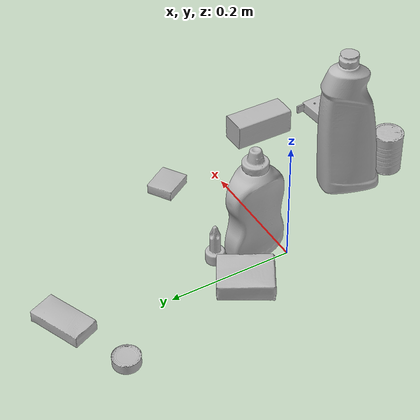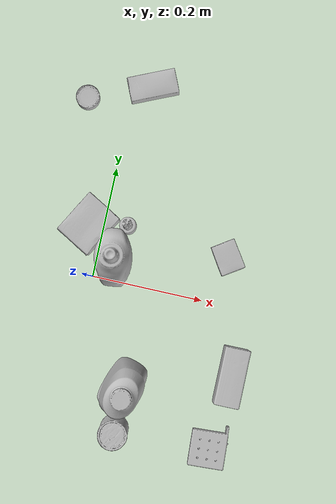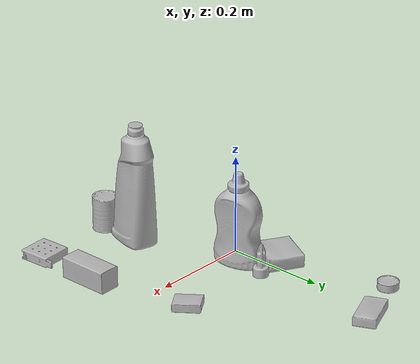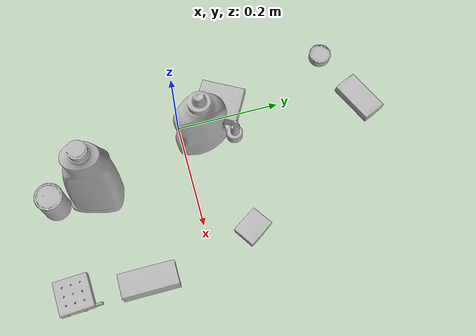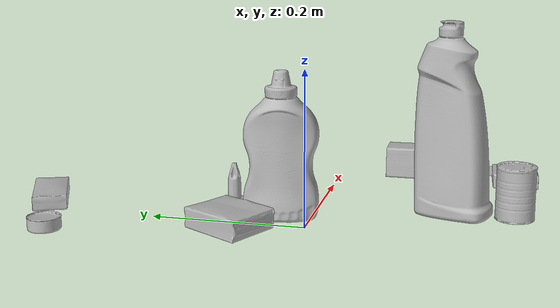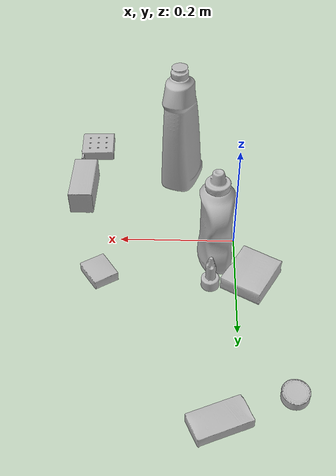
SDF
<sdf version="1.4">
  <world name="default">
    <light name="light1" type="point">
      <pose>0 0 1 0 0 0</pose>
      <diffuse>3 3 3 1</diffuse>
      <specular>3 3 3 1</specular>
    </light>
    <light name="light2" type="point">
      <pose>0 0.5 2 0 0 0</pose>
      <diffuse>1 1 1 1</diffuse>
      <specular>1 1 1 1</specular>
    </light>
    <light name="light3" type="point">
      <pose>0 0.5 2 0 0 0</pose>
      <diffuse>3 3 3 1</diffuse>
      <specular>3 3 3 1</specular>
    </light>
    <scene>
      <ambient>0.7 0.7 0.7</ambient>
    </scene>
    <model name="bottle1">
      <link name="link_bottle1">
        <collision name="default">
          <geometry>
            <mesh>
              <uri>model://mustard_bottle/collision_meshes/collision.obj</uri>
              <scale>1.0 1.0 1.0</scale>
            </mesh>
          </geometry>
          <surface>
            <friction>
              <ode>
                <mu>0.5</mu>
                <mu2>0.5</mu2>
              </ode>
            </friction>
          <contact>
        <ode>
            <max_vel>0</max_vel>
            <min_depth>0.0001</min_depth>
            <kp>1e8</kp>
        </ode>
    </contact></surface>
        </collision>
        <visual name="default">
          <geometry>
            <mesh>
              <uri>model://mustard_bottle/visual_meshes/visual.dae</uri>
              <scale>1.0 1.0 1.0</scale>
            </mesh>
          </geometry>
        </visual>
        <inertial>
          <mass>0.9814921021461487</mass>
          <pose>0.000503245391882956 -0.00015647400869056582 -0.0174757968634367 0.00041823298570721707 0.000946579165099878 0.024853733541460008</pose>
          <inertia>
            <ixx>0.0027254699</ixx>
            <iyy>0.0023913688</iyy>
            <izz>0.0007182988</izz>
            <ixy>0</ixy>
            <ixz>0</ixz>
            <iyz>0</iyz>
          </inertia>
        </inertial>
      </link>
      <pose>0.034102048724889755 0.03808630257844925 0.09616932272911072 9.630264663760329e-05 -0.0009428550833802276 0.12066590967909624</pose>
    </model>
    <model name="bottle2">
      <link name="link_bottle2">
        <collision name="default">
          <geometry>
            <mesh>
              <uri>model://bleach_cleanser/collision_meshes/collision.obj</uri>
              <scale>1.0 1.0 1.0</scale>
            </mesh>
          </geometry>
          <surface>
            <friction>
              <ode>
                <mu>0.5</mu>
                <mu2>0.5</mu2>
              </ode>
            </friction>
          <contact>
        <ode>
            <max_vel>0</max_vel>
            <min_depth>0.0001</min_depth>
            <kp>1e8</kp>
        </ode>
    </contact></surface>
        </collision>
        <visual name="default">
          <geometry>
            <mesh>
              <uri>model://bleach_cleanser/visual_meshes/visual.dae</uri>
              <scale>1.0 1.0 1.0</scale>
            </mesh>
          </geometry>
        </visual>
        <inertial>
          <mass>0.5613878965377808</mass>
          <pose>0.00012193182919872925 0.0037838828284293413 -0.02442161738872528 -0.07381670616369514 0.00042011545192634117 -0.006875071107578698</pose>
          <inertia>
            <ixx>0.0027323565</ixx>
            <iyy>0.002546156</iyy>
            <izz>0.0004671619</izz>
            <ixy>0</ixy>
            <ixz>0</ixz>
            <iyz>0</iyz>
          </inertia>
        </inertial>
      </link>
      <pose>0.09654990583658218 -0.17509591579437256 0.12605008482933044 -0.00409378878424771 0.0057951036027468665 -0.2877789000973329</pose>
    </model>
    <model name="toy1">
      <link name="link_toy1">
        <collision name="default">
          <geometry>
            <mesh>
              <uri>model://nine_hole_peg_test/collision_meshes/collision.obj</uri>
              <scale>0.5 0.5 0.5</scale>
            </mesh>
          </geometry>
          <surface>
            <friction>
              <ode>
                <mu>0.5</mu>
                <mu2>0.5</mu2>
              </ode>
            </friction>
          <contact>
        <ode>
            <max_vel>0</max_vel>
            <min_depth>0.0001</min_depth>
            <kp>1e8</kp>
        </ode>
    </contact></surface>
        </collision>
        <visual name="default">
          <geometry>
            <mesh>
              <uri>model://nine_hole_peg_test/visual_meshes/visual.dae</uri>
              <scale>0.5 0.5 0.5</scale>
            </mesh>
          </geometry>
        </visual>
        <inertial>
          <mass>0.10001979023218155</mass>
          <pose>-0.002308693015947938 -0.0048238071613013744 1.323034393863054e-05 -0.001466679064329537 0.000719417562538249 -0.6342417933325166</pose>
          <inertia>
            <ixx>3.9099352e-05</ixx>
            <iyy>3.650665e-05</iyy>
            <izz>6.851359e-05</izz>
            <ixy>0</ixy>
            <ixz>0</ixz>
            <iyz>0</iyz>
          </inertia>
        </inertial>
      </link>
      <pose>0.2685030400753021 -0.24770541489124298 0.010385502129793167 6.637651472172637e-09 -1.1442691232109121e-08 0.06125040395639897</pose>
    </model>
    <model name="toy2">
      <link name="link_toy2">
        <collision name="default">
          <geometry>
            <mesh>
              <uri>model://d_toy_airplane/collision_meshes/collision.obj</uri>
              <scale>1.0 1.0 1.0</scale>
            </mesh>
          </geometry>
          <surface>
            <friction>
              <ode>
                <mu>0.5</mu>
                <mu2>0.5</mu2>
              </ode>
            </friction>
          <contact>
        <ode>
            <max_vel>0</max_vel>
            <min_depth>0.0001</min_depth>
            <kp>1e8</kp>
        </ode>
    </contact></surface>
        </collision>
        <visual name="default">
          <geometry>
            <mesh>
              <uri>model://d_toy_airplane/visual_meshes/visual.dae</uri>
              <scale>1.0 1.0 1.0</scale>
            </mesh>
          </geometry>
        </visual>
        <inertial>
          <mass>0.019254321232438087</mass>
          <pose>9.410314669366926e-05 -5.809308640891686e-05 -0.011728096753358841 0.0002669110283705203 0.00467899073598619 0.5194519611142697</pose>
          <inertia>
            <ixx>5.7720713e-06</ixx>
            <iyy>5.776424e-06</iyy>
            <izz>1.7426261e-06</izz>
            <ixy>0</ixy>
            <ixz>0</ixz>
            <iyz>0</iyz>
          </inertia>
        </inertial>
      </link>
      <pose>0.042397961020469666 0.10227968543767929 0.03333822637796402 0.0002753189627544406 -3.6194265120837935e-05 1.7013757179829199</pose>
    </model>
    <model name="can1">
      <link name="link_can1">
        <collision name="default">
          <geometry>
            <mesh>
              <uri>model://master_chef_can/collision_meshes/collision.obj</uri>
              <scale>0.5 0.5 0.5</scale>
            </mesh>
          </geometry>
          <surface>
            <friction>
              <ode>
                <mu>0.5</mu>
                <mu2>0.5</mu2>
              </ode>
            </friction>
          <contact>
        <ode>
            <max_vel>0</max_vel>
            <min_depth>0.0001</min_depth>
            <kp>1e8</kp>
        </ode>
    </contact></surface>
        </collision>
        <visual name="default">
          <geometry>
            <mesh>
              <uri>model://master_chef_can/visual_meshes/visual.dae</uri>
              <scale>0.5 0.5 0.5</scale>
            </mesh>
          </geometry>
        </visual>
        <inertial>
          <mass>0.11909646540880203</mass>
          <pose>-4.661963976104744e-05 1.3926845099376806e-07 -5.07990553160198e-05 -0.0017995128948922 0.0006479239957886283 -0.6102624789319168</pose>
          <inertia>
            <ixx>6.990155e-05</ixx>
            <iyy>6.938709e-05</iyy>
            <izz>3.8625953e-05</izz>
            <ixy>0</ixy>
            <ixz>0</ixz>
            <iyz>0</iyz>
          </inertia>
        </inertial>
      </link>
      <pose>0.09686847031116486 -0.25506141781806946 0.03530200943350792 -7.043521273425129e-07 -5.335321953519488e-07 -1.6152401395257185</pose>
    </model>
    <model name="can2">
      <link name="link_can2">
        <collision name="default">
          <geometry>
            <mesh>
              <uri>model://tuna_fish_can/collision_meshes/collision.obj</uri>
              <scale>0.5 0.5 0.5</scale>
            </mesh>
          </geometry>
          <surface>
            <friction>
              <ode>
                <mu>0.5</mu>
                <mu2>0.5</mu2>
              </ode>
            </friction>
          <contact>
        <ode>
            <max_vel>0</max_vel>
            <min_depth>0.0001</min_depth>
            <kp>1e8</kp>
        </ode>
    </contact></surface>
        </collision>
        <visual name="default">
          <geometry>
            <mesh>
              <uri>model://tuna_fish_can/visual_meshes/visual.dae</uri>
              <scale>0.5 0.5 0.5</scale>
            </mesh>
          </geometry>
        </visual>
        <inertial>
          <mass>0.019333453848958015</mass>
          <pose>-2.0361452698125504e-05 -7.256490789586678e-06 -0.0005269024986773729 -0.0017944786606280685 0.0001716327651594619 0.24054823336333434</pose>
          <inertia>
            <ixx>2.6139116e-06</ixx>
            <iyy>2.6030175e-06</iyy>
            <izz>4.4727767e-06</izz>
            <ixy>0</ixy>
            <ixz>0</ixz>
            <iyz>0</iyz>
          </inertia>
        </inertial>
      </link>
      <pose>-0.07846313714981079 0.3137788772583008 0.008520002476871014 -1.1723218295902386e-08 2.168443678063656e-08 -1.931998523921928</pose>
    </model>
    <model name="box1">
      <link name="link_box1">
        <collision name="default">
          <geometry>
            <mesh>
              <uri>model://sugar_box/collision_meshes/collision.obj</uri>
              <scale>0.5 0.5 0.5</scale>
            </mesh>
          </geometry>
          <surface>
            <friction>
              <ode>
                <mu>0.5</mu>
                <mu2>0.5</mu2>
              </ode>
            </friction>
          <contact>
        <ode>
            <max_vel>0</max_vel>
            <min_depth>0.0001</min_depth>
            <kp>1e8</kp>
        </ode>
    </contact></surface>
        </collision>
        <visual name="default">
          <geometry>
            <mesh>
              <uri>model://sugar_box/visual_meshes/visual.dae</uri>
              <scale>0.5 0.5 0.5</scale>
            </mesh>
          </geometry>
        </visual>
        <inertial>
          <mass>0.11277332901954651</mass>
          <pose>0.0005171863595023751 1.924554817378521e-05 -0.0001818240125430748 -0.00040462603870476286 0.0010506635217257978 0.002615378323397263</pose>
          <inertia>
            <ixx>2.34906e-05</ixx>
            <iyy>7.592646e-05</iyy>
            <izz>9.089305e-05</izz>
            <ixy>0</ixy>
            <ixz>0</ixz>
            <iyz>0</iyz>
          </inertia>
        </inertial>
      </link>
      <pose>0.03142520412802696 0.3588091731071472 0.011399311013519764 0.00077533414449024 -0.0234326877158886 0.40819825065880305</pose>
    </model>
    <model name="box2">
      <link name="link_box2">
        <collision name="default">
          <geometry>
            <mesh>
              <uri>model://gelatin_box/collision_meshes/collision.obj</uri>
              <scale>1.0 1.0 1.0</scale>
            </mesh>
          </geometry>
          <surface>
            <friction>
              <ode>
                <mu>0.5</mu>
                <mu2>0.5</mu2>
              </ode>
            </friction>
          <contact>
        <ode>
            <max_vel>0</max_vel>
            <min_depth>0.0001</min_depth>
            <kp>1e8</kp>
        </ode>
    </contact></surface>
        </collision>
        <visual name="default">
          <geometry>
            <mesh>
              <uri>model://gelatin_box/visual_meshes/visual.dae</uri>
              <scale>1.0 1.0 1.0</scale>
            </mesh>
          </geometry>
        </visual>
        <inertial>
          <mass>0.18825438618659973</mass>
          <pose>0.0004319618456065655 0.00011156871914863586 -0.0003640321083366871 -0.0010503720853528096 -0.004755817758068365 0.016440559471334753</pose>
          <inertia>
            <ixx>0.00013289225</ixx>
            <iyy>9.492423e-05</iyy>
            <izz>0.0002022916</izz>
            <ixy>0</ixy>
            <ixz>0</ixz>
            <iyz>0</iyz>
          </inertia>
        </inertial>
      </link>
      <pose>-0.026418207213282585 0.08953266590833664 0.01516831573098898 0.005597288797028484 -0.007304338771877319 -0.5237022921724429</pose>
    </model>
    <model name="box3">
      <link name="link_box3">
        <collision name="default">
          <geometry>
            <mesh>
              <uri>model://wood_block/collision_meshes/collision.obj</uri>
              <scale>0.5 0.5 0.5</scale>
            </mesh>
          </geometry>
          <surface>
            <friction>
              <ode>
                <mu>0.5</mu>
                <mu2>0.5</mu2>
              </ode>
            </friction>
          <contact>
        <ode>
            <max_vel>0</max_vel>
            <min_depth>0.0001</min_depth>
            <kp>1e8</kp>
        </ode>
    </contact></surface>
        </collision>
        <visual name="default">
          <geometry>
            <mesh>
              <uri>model://wood_block/visual_meshes/visual.dae</uri>
              <scale>0.5 0.5 0.5</scale>
            </mesh>
          </geometry>
        </visual>
        <inertial>
          <mass>0.16905224323272705</mass>
          <pose>-2.906657982748584e-06 -0.00028540476341731846 0.00013204291462898254 -0.05220975529285028 -0.0051926941753174345 -0.0068613788950967446</pose>
          <inertia>
            <ixx>5.655437e-05</ixx>
            <iyy>0.00017865526</iyy>
            <izz>0.00017798702</izz>
            <ixy>0</ixy>
            <ixz>0</ixz>
            <iyz>0</iyz>
          </inertia>
        </inertial>
      </link>
      <pose>0.2784019410610199 -0.11893604695796967 0.0226292684674263 -0.005208554322948778 0.005718758780346172 -1.56715548039734</pose>
    </model>
    <model name="box4">
      <link name="link_box4">
        <collision name="default">
          <geometry>
            <mesh>
              <uri>model://pudding_box/collision_meshes/collision.obj</uri>
              <scale>0.5 0.5 0.5</scale>
            </mesh>
          </geometry>
          <surface>
            <friction>
              <ode>
                <mu>0.5</mu>
                <mu2>0.5</mu2>
              </ode>
            </friction>
          <contact>
        <ode>
            <max_vel>0</max_vel>
            <min_depth>0.0001</min_depth>
            <kp>1e8</kp>
        </ode>
    </contact></surface>
        </collision>
        <visual name="default">
          <geometry>
            <mesh>
              <uri>model://pudding_box/visual_meshes/visual.dae</uri>
              <scale>0.5 0.5 0.5</scale>
            </mesh>
          </geometry>
        </visual>
        <inertial>
          <mass>0.04372405260801315</mass>
          <pose>0.00024474109522998333 0.00040339428232982755 -0.00025944135268218815 0.005213099923843092 -0.006603798704775496 0.02007982702870814</pose>
          <inertia>
            <ixx>1.2356946e-05</ixx>
            <iyy>8.313842e-06</iyy>
            <izz>1.8248264e-05</izz>
            <ixy>0</ixy>
            <ixz>0</ixz>
            <iyz>0</iyz>
          </inertia>
        </inertial>
      </link>
      <pose>0.2289608269929886 0.08527712523937225 0.009862898848950863 0.02234850896364762 -0.011391734668531557 0.5856087855522483</pose>
    </model>
  <physics type="ode">
      <max_contacts>50</max_contacts>
      <ode>
        <solver>
          <type>quick</type>
          <iters>75</iters>
        </solver>
        <constraints>
          <contact_max_correcting_vel>0</contact_max_correcting_vel>
          <contact_surface_layer>0</contact_surface_layer>
        </constraints>
      </ode>
    </physics></world>
</sdf>
